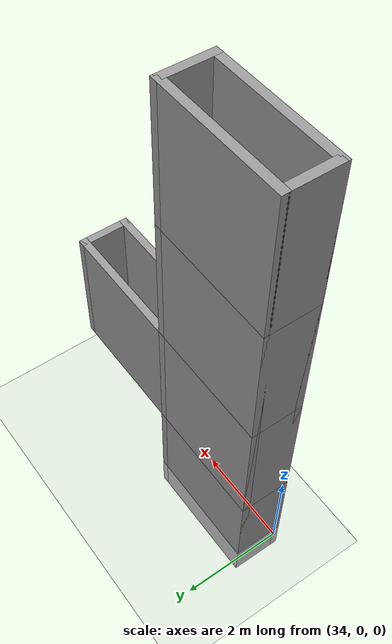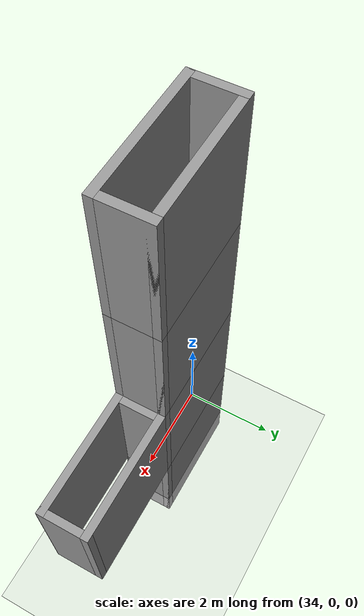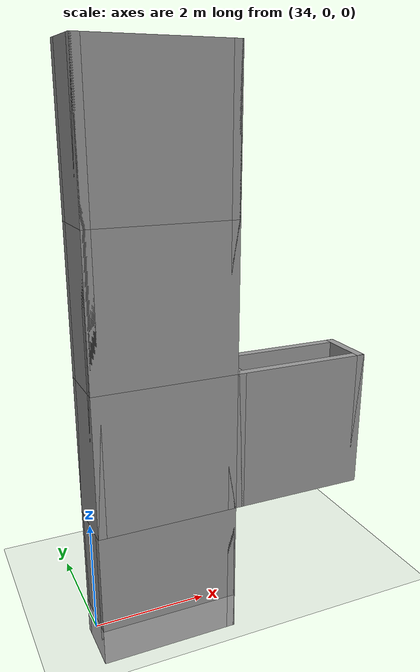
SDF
<sdf version="1.6">
 <world name="default">
  <model name="ground_plane">
   <static>1</static>
   <link name="link">
    <collision name="collision">
     <geometry><plane><normal>0 0 1</normal><size>100 100</size></plane></geometry>
     <surface><friction><ode><mu>100</mu><mu2>50</mu2></ode></friction></surface>
    </collision>
    <visual name="visual">
     <cast_shadows>0</cast_shadows>
     <geometry><plane><normal>0 0 1</normal><size>100 100</size></plane></geometry>
     <material>
      <script><uri>file://media/materials/scripts/gazebo.material</uri><name>Gazebo/Grey</name></script>
     </material>
    </visual>
   </link>
  </model>
  <model name="column25_clone_3_clone_0">
   <pose>35.3237 0.315716 6.81299 0 -0 0</pose>
   <link name="Wall_0">
    <collision name="Wall_0_Collision">
     <geometry><box><size>2.5 0.15 2.5</size></box></geometry>
     <pose>0 0 1.25 0 -0 0</pose>
    </collision>
    <visual name="Wall_0_Visual">
     <pose>0 0 1.25 0 -0 0</pose>
     <geometry><box><size>2.5 0.15 2.5</size></box></geometry>
     <material>
      <script><uri>file://media/materials/scripts/gazebo.material</uri><name>Gazebo/Grey</name></script>
      <ambient>1 1 1 1</ambient>
     </material>
    </visual>
    <pose>0 -0.425 0 0 -0 0</pose>
   </link>
   <link name="Wall_1">
    <collision name="Wall_1_Collision">
     <geometry><box><size>1 0.15 2.5</size></box></geometry>
     <pose>0 0 1.25 0 -0 0</pose>
    </collision>
    <visual name="Wall_1_Visual">
     <pose>0 0 1.25 0 -0 0</pose>
     <geometry><box><size>1 0.15 2.5</size></box></geometry>
     <material>
      <script><uri>file://media/materials/scripts/gazebo.material</uri><name>Gazebo/Grey</name></script>
      <ambient>1 1 1 1</ambient>
     </material>
    </visual>
    <pose>1.175 0 0 0 -0 1.5708</pose>
   </link>
   <link name="Wall_2">
    <collision name="Wall_2_Collision">
     <geometry><box><size>2.5 0.15 2.5</size></box></geometry>
     <pose>0 0 1.25 0 -0 0</pose>
    </collision>
    <visual name="Wall_2_Visual">
     <pose>0 0 1.25 0 -0 0</pose>
     <geometry><box><size>2.5 0.15 2.5</size></box></geometry>
     <material>
      <script><uri>file://media/materials/scripts/gazebo.material</uri><name>Gazebo/Grey</name></script>
      <ambient>1 1 1 1</ambient>
     </material>
    </visual>
    <pose>0 0.425 0 0 -0 3.14159</pose>
   </link>
   <link name="Wall_3">
    <collision name="Wall_3_Collision">
     <geometry><box><size>1 0.15 2.5</size></box></geometry>
     <pose>0 0 1.25 0 -0 0</pose>
    </collision>
    <visual name="Wall_3_Visual">
     <pose>0 0 1.25 0 -0 0</pose>
     <geometry><box><size>1 0.15 2.5</size></box></geometry>
     <material>
      <script><uri>file://media/materials/scripts/gazebo.material</uri><name>Gazebo/Grey</name></script>
      <ambient>1 1 1 1</ambient>
     </material>
    </visual>
    <pose>-1.175 0 0 0 0 -1.5708</pose>
   </link>
   <static>1</static>
  </model>
  <model name="column25_clone_3_clone_0_clone">
   <pose>35.3237 0.315716 4.31299 0 -0 0</pose>
   <link name="Wall_0">
    <collision name="Wall_0_Collision">
     <geometry><box><size>2.5 0.15 2.5</size></box></geometry>
     <pose>0 0 1.25 0 -0 0</pose>
    </collision>
    <visual name="Wall_0_Visual">
     <pose>0 0 1.25 0 -0 0</pose>
     <geometry><box><size>2.5 0.15 2.5</size></box></geometry>
     <material>
      <script><uri>file://media/materials/scripts/gazebo.material</uri><name>Gazebo/Grey</name></script>
      <ambient>1 1 1 1</ambient>
     </material>
    </visual>
    <pose>0 -0.425 0 0 -0 0</pose>
   </link>
   <link name="Wall_1">
    <collision name="Wall_1_Collision">
     <geometry><box><size>1 0.15 2.5</size></box></geometry>
     <pose>0 0 1.25 0 -0 0</pose>
    </collision>
    <visual name="Wall_1_Visual">
     <pose>0 0 1.25 0 -0 0</pose>
     <geometry><box><size>1 0.15 2.5</size></box></geometry>
     <material>
      <script><uri>file://media/materials/scripts/gazebo.material</uri><name>Gazebo/Grey</name></script>
      <ambient>1 1 1 1</ambient>
     </material>
    </visual>
    <pose>1.175 0 0 0 -0 1.5708</pose>
   </link>
   <link name="Wall_2">
    <collision name="Wall_2_Collision">
     <geometry><box><size>2.5 0.15 2.5</size></box></geometry>
     <pose>0 0 1.25 0 -0 0</pose>
    </collision>
    <visual name="Wall_2_Visual">
     <pose>0 0 1.25 0 -0 0</pose>
     <geometry><box><size>2.5 0.15 2.5</size></box></geometry>
     <material>
      <script><uri>file://media/materials/scripts/gazebo.material</uri><name>Gazebo/Grey</name></script>
      <ambient>1 1 1 1</ambient>
     </material>
    </visual>
    <pose>0 0.425 0 0 -0 3.14159</pose>
   </link>
   <link name="Wall_3">
    <collision name="Wall_3_Collision">
     <geometry><box><size>1 0.15 2.5</size></box></geometry>
     <pose>0 0 1.25 0 -0 0</pose>
    </collision>
    <visual name="Wall_3_Visual">
     <pose>0 0 1.25 0 -0 0</pose>
     <geometry><box><size>1 0.15 2.5</size></box></geometry>
     <material>
      <script><uri>file://media/materials/scripts/gazebo.material</uri><name>Gazebo/Grey</name></script>
      <ambient>1 1 1 1</ambient>
     </material>
    </visual>
    <pose>-1.175 0 0 0 0 -1.5708</pose>
   </link>
   <static>1</static>
  </model>
  <model name="column25_clone_3_clone_0_clone_clone">
   <pose>35.3237 0.315716 1.81299 0 -0 0</pose>
   <link name="Wall_0">
    <collision name="Wall_0_Collision">
     <geometry><box><size>2.5 0.15 2.5</size></box></geometry>
     <pose>0 0 1.25 0 -0 0</pose>
    </collision>
    <visual name="Wall_0_Visual">
     <pose>0 0 1.25 0 -0 0</pose>
     <geometry><box><size>2.5 0.15 2.5</size></box></geometry>
     <material>
      <script><uri>file://media/materials/scripts/gazebo.material</uri><name>Gazebo/Grey</name></script>
      <ambient>1 1 1 1</ambient>
     </material>
    </visual>
    <pose>0 -0.425 0 0 -0 0</pose>
   </link>
   <link name="Wall_1">
    <collision name="Wall_1_Collision">
     <geometry><box><size>1 0.15 2.5</size></box></geometry>
     <pose>0 0 1.25 0 -0 0</pose>
    </collision>
    <visual name="Wall_1_Visual">
     <pose>0 0 1.25 0 -0 0</pose>
     <geometry><box><size>1 0.15 2.5</size></box></geometry>
     <material>
      <script><uri>file://media/materials/scripts/gazebo.material</uri><name>Gazebo/Grey</name></script>
      <ambient>1 1 1 1</ambient>
     </material>
    </visual>
    <pose>1.175 0 0 0 -0 1.5708</pose>
   </link>
   <link name="Wall_2">
    <collision name="Wall_2_Collision">
     <geometry><box><size>2.5 0.15 2.5</size></box></geometry>
     <pose>0 0 1.25 0 -0 0</pose>
    </collision>
    <visual name="Wall_2_Visual">
     <pose>0 0 1.25 0 -0 0</pose>
     <geometry><box><size>2.5 0.15 2.5</size></box></geometry>
     <material>
      <script><uri>file://media/materials/scripts/gazebo.material</uri><name>Gazebo/Grey</name></script>
      <ambient>1 1 1 1</ambient>
     </material>
    </visual>
    <pose>0 0.425 0 0 -0 3.14159</pose>
   </link>
   <link name="Wall_3">
    <collision name="Wall_3_Collision">
     <geometry><box><size>1 0.15 2.5</size></box></geometry>
     <pose>0 0 1.25 0 -0 0</pose>
    </collision>
    <visual name="Wall_3_Visual">
     <pose>0 0 1.25 0 -0 0</pose>
     <geometry><box><size>1 0.15 2.5</size></box></geometry>
     <material>
      <script><uri>file://media/materials/scripts/gazebo.material</uri><name>Gazebo/Grey</name></script>
      <ambient>1 1 1 1</ambient>
     </material>
    </visual>
    <pose>-1.175 0 0 0 0 -1.5708</pose>
   </link>
   <static>1</static>
  </model>
  <model name="column25_clone_3_clone_0_clone_clone_clone">
   <pose>35.3237 0.315716 -0.687008 0 -0 0</pose>
   <link name="Wall_0">
    <collision name="Wall_0_Collision">
     <geometry><box><size>2.5 0.15 2.5</size></box></geometry>
     <pose>0 0 1.25 0 -0 0</pose>
    </collision>
    <visual name="Wall_0_Visual">
     <pose>0 0 1.25 0 -0 0</pose>
     <geometry><box><size>2.5 0.15 2.5</size></box></geometry>
     <material>
      <script><uri>file://media/materials/scripts/gazebo.material</uri><name>Gazebo/Grey</name></script>
      <ambient>1 1 1 1</ambient>
     </material>
    </visual>
    <pose>0 -0.425 0 0 -0 0</pose>
   </link>
   <link name="Wall_1">
    <collision name="Wall_1_Collision">
     <geometry><box><size>1 0.15 2.5</size></box></geometry>
     <pose>0 0 1.25 0 -0 0</pose>
    </collision>
    <visual name="Wall_1_Visual">
     <pose>0 0 1.25 0 -0 0</pose>
     <geometry><box><size>1 0.15 2.5</size></box></geometry>
     <material>
      <script><uri>file://media/materials/scripts/gazebo.material</uri><name>Gazebo/Grey</name></script>
      <ambient>1 1 1 1</ambient>
     </material>
    </visual>
    <pose>1.175 0 0 0 -0 1.5708</pose>
   </link>
   <link name="Wall_2">
    <collision name="Wall_2_Collision">
     <geometry><box><size>2.5 0.15 2.5</size></box></geometry>
     <pose>0 0 1.25 0 -0 0</pose>
    </collision>
    <visual name="Wall_2_Visual">
     <pose>0 0 1.25 0 -0 0</pose>
     <geometry><box><size>2.5 0.15 2.5</size></box></geometry>
     <material>
      <script><uri>file://media/materials/scripts/gazebo.material</uri><name>Gazebo/Grey</name></script>
      <ambient>1 1 1 1</ambient>
     </material>
    </visual>
    <pose>0 0.425 0 0 -0 3.14159</pose>
   </link>
   <link name="Wall_3">
    <collision name="Wall_3_Collision">
     <geometry><box><size>1 0.15 2.5</size></box></geometry>
     <pose>0 0 1.25 0 -0 0</pose>
    </collision>
    <visual name="Wall_3_Visual">
     <pose>0 0 1.25 0 -0 0</pose>
     <geometry><box><size>1 0.15 2.5</size></box></geometry>
     <material>
      <script><uri>file://media/materials/scripts/gazebo.material</uri><name>Gazebo/Grey</name></script>
      <ambient>1 1 1 1</ambient>
     </material>
    </visual>
    <pose>-1.175 0 0 0 0 -1.5708</pose>
   </link>
   <static>1</static>
  </model>
  <model name="column25_clone_3_clone_0_clone_clone_clone_clone">
   <pose>37.8237 0.315849 1.81299 0 -0 4e-06</pose>
   <link name="Wall_0">
    <collision name="Wall_0_Collision">
     <geometry><box><size>2.5 0.15 2.5</size></box></geometry>
     <pose>0 0 1.25 0 -0 0</pose>
    </collision>
    <visual name="Wall_0_Visual">
     <pose>0 0 1.25 0 -0 0</pose>
     <geometry><box><size>2.5 0.15 2.5</size></box></geometry>
     <material>
      <script><uri>file://media/materials/scripts/gazebo.material</uri><name>Gazebo/Grey</name></script>
      <ambient>1 1 1 1</ambient>
     </material>
    </visual>
    <pose>0 -0.425 0 0 -0 0</pose>
   </link>
   <link name="Wall_1">
    <collision name="Wall_1_Collision">
     <geometry><box><size>1 0.15 2.5</size></box></geometry>
     <pose>0 0 1.25 0 -0 0</pose>
    </collision>
    <visual name="Wall_1_Visual">
     <pose>0 0 1.25 0 -0 0</pose>
     <geometry><box><size>1 0.15 2.5</size></box></geometry>
     <material>
      <script><uri>file://media/materials/scripts/gazebo.material</uri><name>Gazebo/Grey</name></script>
      <ambient>1 1 1 1</ambient>
     </material>
    </visual>
    <pose>1.175 0 0 0 -0 1.5708</pose>
   </link>
   <link name="Wall_2">
    <collision name="Wall_2_Collision">
     <geometry><box><size>2.5 0.15 2.5</size></box></geometry>
     <pose>0 0 1.25 0 -0 0</pose>
    </collision>
    <visual name="Wall_2_Visual">
     <pose>0 0 1.25 0 -0 0</pose>
     <geometry><box><size>2.5 0.15 2.5</size></box></geometry>
     <material>
      <script><uri>file://media/materials/scripts/gazebo.material</uri><name>Gazebo/Grey</name></script>
      <ambient>1 1 1 1</ambient>
     </material>
    </visual>
    <pose>0 0.425 0 0 -0 3.14159</pose>
   </link>
   <link name="Wall_3">
    <collision name="Wall_3_Collision">
     <geometry><box><size>1 0.15 2.5</size></box></geometry>
     <pose>0 0 1.25 0 -0 0</pose>
    </collision>
    <visual name="Wall_3_Visual">
     <pose>0 0 1.25 0 -0 0</pose>
     <geometry><box><size>1 0.15 2.5</size></box></geometry>
     <material>
      <script><uri>file://media/materials/scripts/gazebo.material</uri><name>Gazebo/Grey</name></script>
      <ambient>1 1 1 1</ambient>
     </material>
    </visual>
    <pose>-1.175 0 0 0 0 -1.5708</pose>
   </link>
   <static>1</static>
  </model>
 </world>
</sdf>
